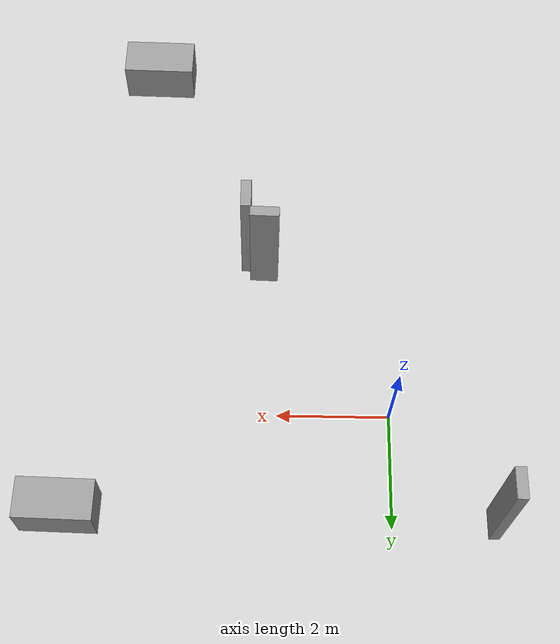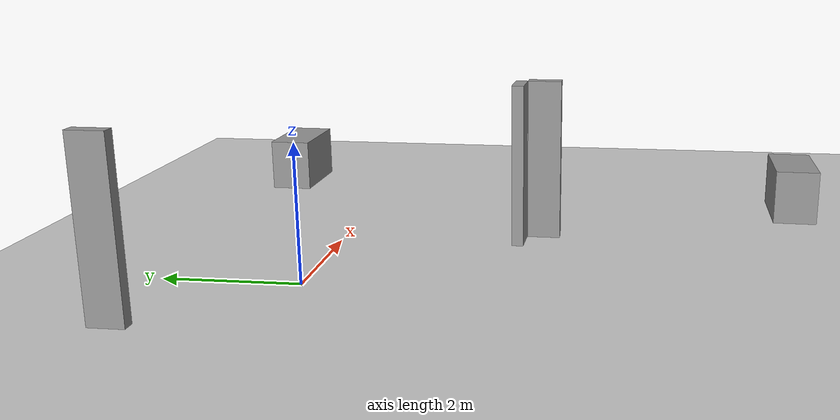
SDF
<sdf version="1.7">
 <world name="default">
  <model name="ground_plane">
   <static>1</static>
   <link name="link">
    <collision name="collision">
     <geometry><plane><normal>0 0 1</normal><size>100 100</size></plane></geometry>
     <surface>
      <contact><collide_bitmask>65535</collide_bitmask></contact>
      <friction><ode><mu>100</mu><mu2>50</mu2></ode></friction>
     </surface>
    </collision>
    <visual name="visual">
     <cast_shadows>0</cast_shadows>
     <geometry><plane><normal>0 0 1</normal><size>100 100</size></plane></geometry>
     <material>
      <script><uri>file://media/materials/scripts/gazebo.material</uri><name>Gazebo/Grey</name></script>
     </material>
    </visual>
   </link>
  </model>
  <model name="Objeto1_0">
   <link name="link_0">
    <inertial>
     <mass>0.815324</mass>
     <inertia>
      <ixx>0.173743</ixx>
      <ixy>0</ixy>
      <ixz>0</ixz>
      <iyy>0.0849664</iyy>
      <iyz>0</iyz>
      <izz>0.154612</izz>
     </inertia>
    </inertial>
    <visual name="visual">
     <geometry><box><size>0.696049 1.33832 0.875248</size></box></geometry>
     <material>
      <lighting>1</lighting>
      <script><uri>file://media/materials/scripts/gazebo.material</uri><name>Gazebo/Grey</name></script>
      <shader type="pixel"><normal_map>__default__</normal_map></shader>
      <ambient>0.3 0.3 0.3 1</ambient>
      <diffuse>0.7 0.7 0.7 1</diffuse>
      <specular>0.01 0.01 0.01 1</specular>
      <emissive>0 0 0 1</emissive>
     </material>
    </visual>
    <collision name="collision">
     <geometry><box><size>0.696049 1.33832 0.875248</size></box></geometry>
     <surface>
      <friction>
       <ode><mu>1</mu><mu2>1</mu2><fdir1>0 0 0</fdir1><slip1>0</slip1><slip2>0</slip2></ode>
       <torsional>
        <coefficient>1</coefficient>
        <patch_radius>0</patch_radius>
        <surface_radius>0</surface_radius>
        <use_patch_radius>1</use_patch_radius>
        <ode><slip>0</slip></ode>
       </torsional>
      </friction>
      <bounce><restitution_coefficient>0</restitution_coefficient><threshold>1e+06</threshold></bounce>
      <contact>
       <collide_without_contact>0</collide_without_contact>
       <collide_without_contact_bitmask>1</collide_without_contact_bitmask>
       <collide_bitmask>1</collide_bitmask>
       <ode>
        <soft_cfm>0</soft_cfm>
        <soft_erp>0.2</soft_erp>
        <kp>1e+13</kp>
        <kd>1</kd>
        <max_vel>0.01</max_vel>
        <min_depth>0</min_depth>
       </ode>
       <bullet>
        <split_impulse>1</split_impulse>
        <split_impulse_penetration_threshold>-0.01</split_impulse_penetration_threshold>
        <soft_cfm>0</soft_cfm>
        <soft_erp>0.2</soft_erp>
        <kp>1e+13</kp>
        <kd>1</kd>
       </bullet>
      </contact>
     </surface>
    </collision>
   </link>
   <static>0</static>
   <pose>4.42943 -7.20729 0.437624 0 -0 1.55008</pose>
  </model>
  <model name="Objeto3">
   <link name="link_3">
    <inertial>
     <mass>0.230988</mass>
     <inertia>
      <ixx>0.123228</ixx>
      <ixy>0</ixy>
      <ixz>0</ixz>
      <iyy>0.118879</iyy>
      <iyz>0</iyz>
      <izz>0.00563731</izz>
     </inertia>
    </inertial>
    <pose>-4e-06 -5e-06 3e-06 0 -0 0</pose>
    <visual name="visual">
     <geometry><box><size>0.182906 0.509321 2.47839</size></box></geometry>
     <material>
      <lighting>1</lighting>
      <script><uri>file://media/materials/scripts/gazebo.material</uri><name>Gazebo/Grey</name></script>
      <shader type="pixel"><normal_map>__default__</normal_map></shader>
      <ambient>1 1 1 0</ambient>
      <diffuse>0.7 0.7 0.7 1</diffuse>
      <specular>0.01 0.01 0.01 1</specular>
      <emissive>0 0 0 1</emissive>
     </material>
    </visual>
    <collision name="collision">
     <geometry><box><size>0.182906 0.509321 2.47839</size></box></geometry>
     <surface>
      <friction>
       <ode><mu>1</mu><mu2>1</mu2><fdir1>0 0 0</fdir1><slip1>0</slip1><slip2>0</slip2></ode>
       <torsional>
        <coefficient>1</coefficient>
        <patch_radius>0</patch_radius>
        <surface_radius>0</surface_radius>
        <use_patch_radius>1</use_patch_radius>
        <ode><slip>0</slip></ode>
       </torsional>
      </friction>
      <bounce><restitution_coefficient>0</restitution_coefficient><threshold>1e+06</threshold></bounce>
      <contact>
       <collide_without_contact>0</collide_without_contact>
       <collide_without_contact_bitmask>1</collide_without_contact_bitmask>
       <collide_bitmask>1</collide_bitmask>
       <ode>
        <soft_cfm>0</soft_cfm>
        <soft_erp>0.2</soft_erp>
        <kp>1e+13</kp>
        <kd>1</kd>
        <max_vel>0.01</max_vel>
        <min_depth>0</min_depth>
       </ode>
       <bullet>
        <split_impulse>1</split_impulse>
        <split_impulse_penetration_threshold>-0.01</split_impulse_penetration_threshold>
        <soft_cfm>0</soft_cfm>
        <soft_erp>0.2</soft_erp>
        <kp>1e+13</kp>
        <kd>1</kd>
       </bullet>
      </contact>
     </surface>
    </collision>
   </link>
   <static>0</static>
   <pose>-1.73014 1.88172 1.25385 0 -0 0</pose>
  </model>
  <model name="Objeto3_clone_1">
   <link name="link_3">
    <inertial>
     <mass>0.230988</mass>
     <inertia>
      <ixx>0.123228</ixx>
      <ixy>0</ixy>
      <ixz>0</ixz>
      <iyy>0.118879</iyy>
      <iyz>0</iyz>
      <izz>0.00563731</izz>
     </inertia>
    </inertial>
    <pose>-4e-06 -5e-06 3e-06 0 -0 0</pose>
    <visual name="visual">
     <geometry><box><size>0.182906 0.509321 2.47839</size></box></geometry>
     <material>
      <lighting>1</lighting>
      <script><uri>file://media/materials/scripts/gazebo.material</uri><name>Gazebo/Grey</name></script>
      <shader type="pixel"><normal_map>__default__</normal_map></shader>
      <ambient>1 1 1 0</ambient>
      <diffuse>0.7 0.7 0.7 1</diffuse>
      <specular>0.01 0.01 0.01 1</specular>
      <emissive>0 0 0 1</emissive>
     </material>
    </visual>
    <collision name="collision">
     <geometry><box><size>0.182906 0.509321 2.47839</size></box></geometry>
     <surface>
      <friction>
       <ode><mu>1</mu><mu2>1</mu2><fdir1>0 0 0</fdir1><slip1>0</slip1><slip2>0</slip2></ode>
       <torsional>
        <coefficient>1</coefficient>
        <patch_radius>0</patch_radius>
        <surface_radius>0</surface_radius>
        <use_patch_radius>1</use_patch_radius>
        <ode><slip>0</slip></ode>
       </torsional>
      </friction>
      <bounce><restitution_coefficient>0</restitution_coefficient><threshold>1e+06</threshold></bounce>
      <contact>
       <collide_without_contact>0</collide_without_contact>
       <collide_without_contact_bitmask>1</collide_without_contact_bitmask>
       <collide_bitmask>1</collide_bitmask>
       <ode>
        <soft_cfm>0</soft_cfm>
        <soft_erp>0.2</soft_erp>
        <kp>1e+13</kp>
        <kd>1</kd>
        <max_vel>0.01</max_vel>
        <min_depth>0</min_depth>
       </ode>
       <bullet>
        <split_impulse>1</split_impulse>
        <split_impulse_penetration_threshold>-0.01</split_impulse_penetration_threshold>
        <soft_cfm>0</soft_cfm>
        <soft_erp>0.2</soft_erp>
        <kp>1e+13</kp>
        <kd>1</kd>
       </bullet>
      </contact>
     </surface>
    </collision>
   </link>
   <static>0</static>
   <pose>2.58929 -3.12968 1.25385 0 -0 0</pose>
  </model>
  <model name="Objeto3_clone_3">
   <link name="link_3">
    <inertial>
     <mass>0.230988</mass>
     <inertia>
      <ixx>0.123228</ixx>
      <ixy>0</ixy>
      <ixz>0</ixz>
      <iyy>0.118879</iyy>
      <iyz>0</iyz>
      <izz>0.00563731</izz>
     </inertia>
    </inertial>
    <pose>-4e-06 -5e-06 3e-06 0 -0 0</pose>
    <visual name="visual">
     <geometry><box><size>0.182906 0.509321 2.47839</size></box></geometry>
     <material>
      <lighting>1</lighting>
      <script><uri>file://media/materials/scripts/gazebo.material</uri><name>Gazebo/Grey</name></script>
      <shader type="pixel"><normal_map>__default__</normal_map></shader>
      <ambient>1 1 1 0</ambient>
      <diffuse>0.7 0.7 0.7 1</diffuse>
      <specular>0.01 0.01 0.01 1</specular>
      <emissive>0 0 0 1</emissive>
     </material>
    </visual>
    <collision name="collision">
     <geometry><box><size>0.182906 0.509321 2.47839</size></box></geometry>
     <surface>
      <friction>
       <ode><mu>1</mu><mu2>1</mu2><fdir1>0 0 0</fdir1><slip1>0</slip1><slip2>0</slip2></ode>
       <torsional>
        <coefficient>1</coefficient>
        <patch_radius>0</patch_radius>
        <surface_radius>0</surface_radius>
        <use_patch_radius>1</use_patch_radius>
        <ode><slip>0</slip></ode>
       </torsional>
      </friction>
      <bounce><restitution_coefficient>0</restitution_coefficient><threshold>1e+06</threshold></bounce>
      <contact>
       <collide_without_contact>0</collide_without_contact>
       <collide_without_contact_bitmask>1</collide_without_contact_bitmask>
       <collide_bitmask>1</collide_bitmask>
       <ode>
        <soft_cfm>0</soft_cfm>
        <soft_erp>0.2</soft_erp>
        <kp>1e+13</kp>
        <kd>1</kd>
        <max_vel>0.01</max_vel>
        <min_depth>0</min_depth>
       </ode>
       <bullet>
        <split_impulse>1</split_impulse>
        <split_impulse_penetration_threshold>-0.01</split_impulse_penetration_threshold>
        <soft_cfm>0</soft_cfm>
        <soft_erp>0.2</soft_erp>
        <kp>1e+13</kp>
        <kd>1</kd>
       </bullet>
      </contact>
     </surface>
    </collision>
   </link>
   <static>0</static>
   <pose>2.26005 -2.77515 1.25385 0 -0 1.54561</pose>
  </model>
  <model name="Objeto1_0_clone">
   <link name="link_0">
    <inertial>
     <mass>0.815324</mass>
     <inertia>
      <ixx>0.173743</ixx>
      <ixy>0</ixy>
      <ixz>0</ixz>
      <iyy>0.0849664</iyy>
      <iyz>0</iyz>
      <izz>0.154612</izz>
     </inertia>
    </inertial>
    <visual name="visual">
     <geometry><box><size>0.696049 1.33832 0.875248</size></box></geometry>
     <material>
      <lighting>1</lighting>
      <script><uri>file://media/materials/scripts/gazebo.material</uri><name>Gazebo/Grey</name></script>
      <shader type="pixel"><normal_map>__default__</normal_map></shader>
      <ambient>0.3 0.3 0.3 1</ambient>
      <diffuse>0.7 0.7 0.7 1</diffuse>
      <specular>0.01 0.01 0.01 1</specular>
      <emissive>0 0 0 1</emissive>
     </material>
    </visual>
    <collision name="collision">
     <geometry><box><size>0.696049 1.33832 0.875248</size></box></geometry>
     <surface>
      <friction>
       <ode><mu>1</mu><mu2>1</mu2><fdir1>0 0 0</fdir1><slip1>0</slip1><slip2>0</slip2></ode>
       <torsional>
        <coefficient>1</coefficient>
        <patch_radius>0</patch_radius>
        <surface_radius>0</surface_radius>
        <use_patch_radius>1</use_patch_radius>
        <ode><slip>0</slip></ode>
       </torsional>
      </friction>
      <bounce><restitution_coefficient>0</restitution_coefficient><threshold>1e+06</threshold></bounce>
      <contact>
       <collide_without_contact>0</collide_without_contact>
       <collide_without_contact_bitmask>1</collide_without_contact_bitmask>
       <collide_bitmask>1</collide_bitmask>
       <ode>
        <soft_cfm>0</soft_cfm>
        <soft_erp>0.2</soft_erp>
        <kp>1e+13</kp>
        <kd>1</kd>
        <max_vel>0.01</max_vel>
        <min_depth>0</min_depth>
       </ode>
       <bullet>
        <split_impulse>1</split_impulse>
        <split_impulse_penetration_threshold>-0.01</split_impulse_penetration_threshold>
        <soft_cfm>0</soft_cfm>
        <soft_erp>0.2</soft_erp>
        <kp>1e+13</kp>
        <kd>1</kd>
       </bullet>
      </contact>
     </surface>
    </collision>
   </link>
   <static>0</static>
   <pose>5.66874 1.8111 0.437624 0 -0 1.55008</pose>
  </model>
 </world>
</sdf>
